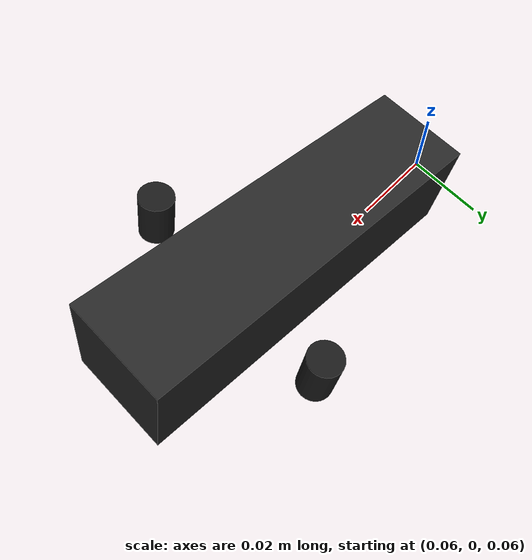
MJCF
<mujoco model="d435i_mount">
  <!-- RealSense D435i camera mount for LeKiwi.
       Sitting on the camera_mount site of lekiwi_base.
       Provides a camera-frustum visual and sites for ray origins. -->

  <default>
    <geom type="box" density="200"/>
  </default>

  <worldbody>
    <body name="d435i_body" pos="0.10 0 0.08" euler="0 -15 0">
      <!-- Camera housing -->
      <geom name="camera_housing" type="box" size="0.045 0.012 0.012"
            pos="0.01 0 0" rgba="0.15 0.15 0.15 1" mass="0.05"/>

      <!-- Left IR sensor -->
      <geom name="ir_left" type="cylinder" size="0.004 0.006"
            pos="0.025 0.025 0" rgba="0.1 0.1 0.1 1" mass="0.005"/>
      <!-- Right IR sensor -->
      <geom name="ir_right" type="cylinder" size="0.004 0.006"
            pos="0.025 -0.025 0" rgba="0.1 0.1 0.1 1" mass="0.005"/>
      <!-- RGB sensor center -->
      <geom name="rgb_sensor" type="cylinder" size="0.006 0.008"
            pos="0.03 0 0" rgba="0.05 0.05 0.05 1" mass="0.005"/>

      <!-- Ray origin sites -->
      <site name="ray_origin" pos="0.035 0 0" size="0.003"/>
    </body>
  </worldbody>
</mujoco>
